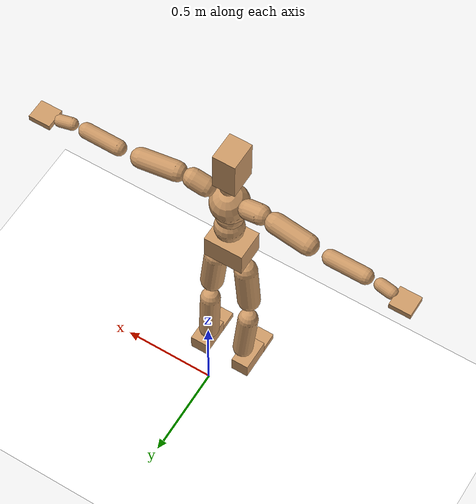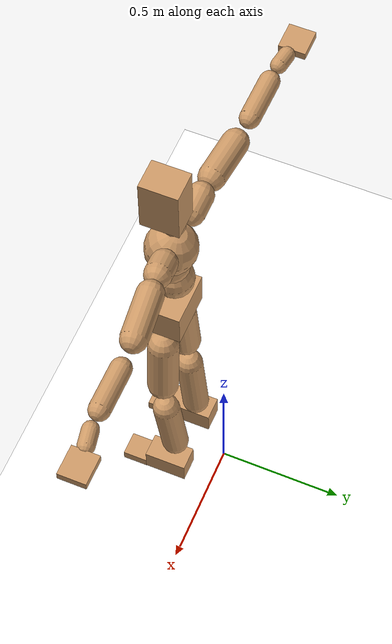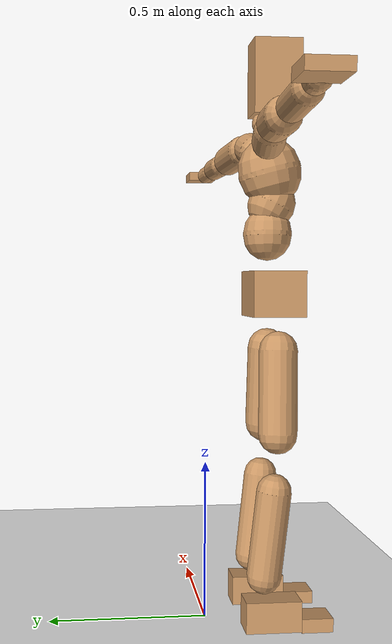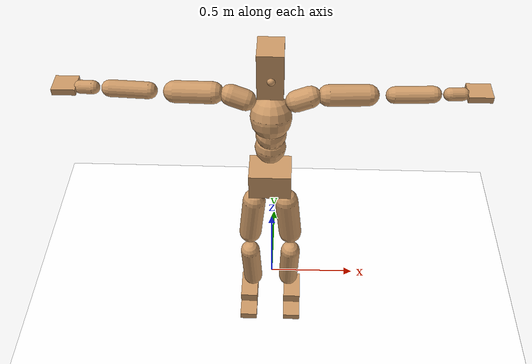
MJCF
<mujoco model="humanoid">
  <option integrator="implicitfast" />

  <visual>
    <global offwidth="1280" offheight="960" />
    <headlight active="1" ambient="0.34 0.34 0.34" diffuse="0.5 0.5 0.5" />
  </visual>

  <default>
    <joint damping="2" stiffness="2" armature="0.01" limited="true" solimplimit="0 .99 .01" />
    <geom condim="1" friction="0.7 0.005 0.0001" solimp=".99 .99 .003" solref="0.015 1" margin="0.001" rgba="0.8 0.6 .4 1" />
    <default class="smplcontact">
      <geom condim="3" friction="1. 0.005 0.0001" solref="0.015 1" solimp="0.98 0.98 0.001" priority="1" />
    </default>
    <default class="stiff_medium">
      <joint stiffness="10" />
    </default>
    <default class="stiff_medium_higher">
      <joint stiffness="50" />
    </default>
    <default class="stiff_high">
      <joint stiffness="100" />
    </default>
  </default>

  <asset>
    <texture type="skybox" builtin="gradient" rgb1="0.99 0.99 0.99" rgb2="0.608 0.828 0.892" width="100" />
    <texture builtin="flat" height="1278" mark="cross" markrgb="1 1 1" name="texgeom" random="0.01" rgb1="0.8 0.6 0.4" rgb2="0.8 0.6 0.4" type="cube" width="127" />
    <texture name="texplane" type="2d" builtin="checker" markrgb="1 1 1" rgb1="0.756 0.772 0.76" rgb2="0.6 0.6 0.6" width="100" height="100" />
    <material name="MatPlane" reflectance="0.5" texture="texplane" texrepeat="1 1" texuniform="true" />
    <material name="geom" texture="texgeom" texuniform="true" />
  </asset>

  <worldbody>
    <light name="tracking_light" pos="0 0 7" dir="0 0 -1" directional="true" cutoff="100" exponent="1" diffuse="1 1 1" specular="0.1 0.1 0.1" mode="trackcom" />
    <camera name="back" pos="0 3 2.4" xyaxes="-1 0 0 0 -1 2" mode="trackcom" />
    <camera name="side" pos="-3 0 2.4" xyaxes="0 -1 0 1 0 2" mode="trackcom" />
    <camera name="front_side" pos="-2.8 -2.8 0.8" xyaxes="0.5 -0.5 0 0.1 0.1 1" mode="trackcom" />
    <geom condim="3" name="floor" pos="0 0 0" rgba="1 1 1 1" size="100 100 .2" type="plane" material="MatPlane" />
    <body name="Pelvis" pos="-0.0018 -0.2233 1.05109" euler="90 0 0">
      <site name="Pelvis" size="0.01" />
      <freejoint name="Pelvis" />
      <geom type="box" pos="-0.0000 -0.0121 -0.0055" size="0.1069 0.0722 0.083" quat="1.0000 0.0000 0.0000 0.0000" density="3165.830099" name="Pelvis" />
      <body name="L_Hip" pos="0.0781875 -0.102825 -0.00765">
        <joint name="L_Hip_x" type="hinge" pos="0 0 0" axis="1 0 0" stiffness="12.190417346938776" range="-160.0 22.92" class="stiff_medium" damping="19.23943835853268" armature="0.013495335550763795"/>
        <joint name="L_Hip_y" type="hinge" pos="0 0 0" axis="0 1 0" stiffness="12.1624156122449" range="-70.0 70.0" class="stiff_medium" damping="12.013485255911053" armature="0.01186637857110307"/>
        <joint name="L_Hip_z" type="hinge" pos="0 0 0" axis="0 0 1" stiffness="12.164813061224491" range="-28.65 90.0" class="stiff_medium" damping="12.81394800146982" armature="0.013497721876857561"/>
        <geom type="capsule" density="2040.816327" fromto="0.0077625 -0.084375 -0.0010125 0.030825 -0.337725 -0.00405" size="0.0615" name="L_Hip" />
        <body name="L_Knee" pos="0.0385875 -0.4221 -0.0050625">
          <joint name="L_Knee_x" type="hinge" pos="0 0 0" axis="1 0 0" range="-5.16 171.89" damping="10.076823862713265" armature="0.013188848617403135" stiffness="2.4059714693877554"/>
          <joint name="L_Knee_y" type="hinge" pos="0 0 0" axis="0 1 0" range="-4.58 6.88" damping="9.486100019400173" armature="0.011596019506642574" stiffness="2.4250264693877552"/>
          <joint name="L_Knee_z" type="hinge" pos="0 0 0" axis="0 0 1" range="-6.88 4.58" damping="10.063496829521757" armature="0.013200099383969124" stiffness="2.3975664285714284"/>
          <geom type="capsule" density="1234.567901" fromto="-0.0030375 -0.08955 -0.0097875 -0.0122625 -0.3582 -0.039375" size="0.0541" name="L_Knee" />
          <body name="L_Ankle" pos="-0.0153 -0.44775 -0.0491625">
            <joint name="L_Ankle_x" type="hinge" pos="0 0 0" axis="1 0 0" range="-45.84 45.84" class="stiff_medium" damping="6.8975328184231035" armature="0.011747130867095272" stiffness="11.250018673469388"/>
            <joint name="L_Ankle_y" type="hinge" pos="0 0 0" axis="0 1 0" range="-74.48 22.92" class="stiff_medium" damping="3.4392113884775433" armature="0.011682135831686723" stiffness="11.250011836734695"/>
            <joint name="L_Ankle_z" type="hinge" pos="0 0 0" axis="0 0 1" range="-4.58 4.58" class="stiff_medium" damping="6.751978545825173" armature="0.011256596119329236" stiffness="11.25"/>
            <geom type="box" pos="0.0262125 -0.0268875 0.027225" size="0.0483 0.0464 0.085" quat="1.0000 0.0000 0.0000 0.0000" density="449.071558" name="L_Ankle" class="smplcontact" />
            <body name="L_Toe" pos="0.0297 -0.062775 0.134213">
              <joint name="L_Toe_x" type="hinge" pos="0 0 0" axis="1 0 0" range="-91.67 22.92" armature="0.011009874139729795" damping="2.225857893684682" stiffness="2.25"/>
              <joint name="L_Toe_y" type="hinge" pos="0 0 0" axis="0 1 0" range="-4.58 4.58" armature="0.010711537859158194" damping="2.1954935747164432" stiffness="2.25"/>
              <joint name="L_Toe_z" type="hinge" pos="0 0 0" axis="0 0 1" range="-4.58 4.58" armature="0.010108317957718103" damping="2.1327782540557623" stiffness="2.25"/>
              <geom type="box" pos="-0.003375 0.0061875 0.0279" size="0.0478 0.02 0.0496" quat="1.0000 0.0000 0.0000 0.0000" density="423.206892" name="L_Toe" class="smplcontact" />
            </body>
          </body>
        </body>
      </body>
      <body name="R_Hip" pos="-0.0761625 -0.101813 -0.0048375">
        <joint name="R_Hip_x" type="hinge" pos="0 0 0" axis="1 0 0" stiffness="12.190417346938776" range="-160.0 22.92" class="stiff_medium" damping="19.23943835853268" armature="0.013495335550763795"/>
        <joint name="R_Hip_y" type="hinge" pos="0 0 0" axis="0 1 0" stiffness="12.1624156122449" range="-70.0 70.0" class="stiff_medium" damping="12.013485255911053" armature="0.01186637857110307"/>
        <joint name="R_Hip_z" type="hinge" pos="0 0 0" axis="0 0 1" stiffness="12.164813061224491" range="-90.0 28.65" class="stiff_medium" damping="12.81394800146982" armature="0.013497721876857561"/>
        <geom type="capsule" density="2040.816327" fromto="-0.0086625 -0.0860625 -0.002025 -0.034425 -0.344362 -0.0079875" size="0.0606" name="R_Hip" />
        <body name="R_Knee" pos="-0.0430875 -0.430425 -0.0100125">
          <joint name="R_Knee_x" type="hinge" pos="0 0 0" axis="1 0 0" range="-5.16 171.89" damping="10.076823862713265" armature="0.013188848617403135" stiffness="2.4059714693877554"/>
          <joint name="R_Knee_y" type="hinge" pos="0 0 0" axis="0 1 0" range="-6.88 4.58" damping="9.486100019400173" armature="0.011596019506642574" stiffness="2.4250264693877552"/>
          <joint name="R_Knee_z" type="hinge" pos="0 0 0" axis="0 0 1" range="-4.58 6.88" damping="10.063496829521757" armature="0.013200099383969124" stiffness="2.3975664285714284"/>
          <geom type="capsule" density="1234.567901" fromto="0.0036 -0.0896625 -0.0095625 0.014175 -0.358537 -0.038025" size="0.0541" name="R_Knee" />
          <body name="R_Ankle" pos="0.017775 -0.4482 -0.0475875">
            <joint name="R_Ankle_x" type="hinge" pos="0 0 0" axis="1 0 0" range="-45.84 45.84" class="stiff_medium" damping="6.8975328184231035" armature="0.011747130867095272" stiffness="11.250018673469388"/>
            <joint name="R_Ankle_y" type="hinge" pos="0 0 0" axis="0 1 0" range="-22.92 74.48" class="stiff_medium" damping="3.4392113884775433" armature="0.011682135831686723" stiffness="11.250011836734695"/>
            <joint name="R_Ankle_z" type="hinge" pos="0 0 0" axis="0 0 1" range="-4.58 4.58" class="stiff_medium" damping="6.751978545825173" armature="0.011256596119329236" stiffness="11.25"/>
            <geom type="box" pos="-0.02385 -0.019575 0.0288" size="0.0483 0.0478 0.0865" quat="1.0000 0.0000 0.0000 0.0000" density="434.700981" name="R_Ankle" class="smplcontact" />
            <body name="R_Toe" pos="-0.028575 -0.0541125 0.138713">
              <joint name="R_Toe_x" type="hinge" pos="0 0 0" axis="1 0 0" range="-91.67 22.92" armature="0.011009874139729795" damping="2.225857893684682" stiffness="2.25"/>
              <joint name="R_Toe_y" type="hinge" pos="0 0 0" axis="0 1 0" range="-4.58 4.58" armature="0.010711537859158194" damping="2.1954935747164432" stiffness="2.25"/>
              <joint name="R_Toe_z" type="hinge" pos="0 0 0" axis="0 0 1" range="-4.58 4.58" armature="0.010108317957718103" damping="2.1327782540557623" stiffness="2.25"/>
              <geom type="box" pos="0.004725 0.0050625 0.0255375" size="0.0479 0.0216 0.0493" quat="1.0000 0.0000 0.0000 0.0000" density="407.384095" name="R_Toe" class="smplcontact" />
            </body>
          </body>
        </body>
      </body>
      <body name="Torso" pos="-0.0025 0.109 -0.0267">
        <joint name="Torso_x" type="hinge" pos="0 0 0" axis="1 0 0" range="-25.78 57.3" class="stiff_medium" damping="16.249002662379556" armature="0.011000822944888126" stiffness="10.667084285714289"/>
        <joint name="Torso_y" type="hinge" pos="0 0 0" axis="0 1 0" range="-57.3 57.3" class="stiff_high" damping="25.82786225767885" armature="0.015782642166796142" stiffness="105.6664755102041"/>
        <joint name="Torso_z" type="hinge" pos="0 0 0" axis="0 0 1" range="-34.38 34.38" class="stiff_high" damping="22.95942684909094" armature="0.012628565201764915" stiffness="104.35375531914897"/>
        <geom type="capsule" density="2040.816327" fromto="0.0025 0.0608 0.0005 0.003 0.0743 0.0006" size="0.0769" name="Torso" />
        <body name="Spine" pos="0.0055 0.1352 0.0011">
          <joint name="Spine_x" type="hinge" pos="0 0 0" axis="1 0 0" stiffness="10.801640204081632" range="-25.78 57.3" class="stiff_medium" damping="16.529498689681223" armature="0.011242092117287049"/>
          <joint name="Spine_y" type="hinge" pos="0 0 0" axis="0 1 0" stiffness="10.993194042553192" range="-57.3 57.3" class="stiff_high" damping="10.550939846165113" armature="0.015822621024438047"/>
          <joint name="Spine_z" type="hinge" pos="0 0 0" axis="0 0 1" stiffness="21.950184081632656" range="-34.38 34.38" class="stiff_high" damping="14.755254913518767" armature="0.013775988465595862"/>
          <geom type="capsule" density="2040.816327" fromto="0.0007 0.0238 0.0114 0.0008 0.0291 0.014" size="0.0755" name="Spine" />
          <body name="Chest" pos="0.0015 0.0529 0.0254">
            <joint name="Chest_x" type="hinge" pos="0 0 0" axis="1 0 0" stiffness="11.160686250000001" range="-25.78 57.3" class="stiff_medium" damping="16.913025635620155" armature="0.011391192649850406"/>
            <joint name="Chest_y" type="hinge" pos="0 0 0" axis="0 1 0" stiffness="12.279827826086954" range="-57.3 57.3" class="stiff_high" damping="11.153527766970866" armature="0.015828955346832537"/>
            <joint name="Chest_z" type="hinge" pos="0 0 0" axis="0 0 1" stiffness="22.066057083333334" range="-34.38 34.38" class="stiff_high" damping="15.064016907343916" armature="0.014283161773945485"/>
            <geom type="capsule" density="2040.816327" fromto="-0.0009 0.0682 -0.0173 -0.001 0.0833 -0.0212" size="0.1002" name="Chest" />
            <body name="Neck" pos="-0.0028 0.2139 -0.0429">
              <joint name="Neck_x" type="hinge" pos="0 0 0" axis="1 0 0" range="-28.65 57.3" class="stiff_medium_higher" damping="9.999999999999996" armature="0.009999999999999993" stiffness="50.0"/>
              <joint name="Neck_y" type="hinge" pos="0 0 0" axis="0 1 0" range="-40.11 40.11" class="stiff_medium_higher" damping="10.0" armature="0.010000000000000002" stiffness="50.0"/>
              <joint name="Neck_z" type="hinge" pos="0 0 0" axis="0 0 1" range="-40.11 40.11" class="stiff_medium_higher" damping="9.999999999999996" armature="0.009999999999999993" stiffness="50.0"/>
              <geom type="capsule" density="1000" fromto="0.001 0.013 0.0103 0.0041 0.052 0.0411" size="0.0436" name="Neck" />
              <body name="Head" pos="0.0052 0.065 0.0513">
                <joint name="Head_x" type="hinge" pos="0 0 0" axis="1 0 0" range="-28.65 57.3" class="stiff_medium_higher" damping="1.999999999999994" armature="0.009999999999999941" stiffness="50.0"/>
                <joint name="Head_y" type="hinge" pos="0 0 0" axis="0 1 0" range="-40.11 40.11" class="stiff_medium_higher" damping="1.9999999999999998" armature="0.009999999999999998" stiffness="50.0"/>
                <joint name="Head_z" type="hinge" pos="0 0 0" axis="0 0 1" range="-40.11 40.11" class="stiff_medium_higher" damping="1.9999999999999913" armature="0.009999999999999913" stiffness="50.0"/>
                <geom type="box" pos="-0.0042 0.0876 -0.0116" size="0.0606 0.1154 0.076" quat="1.0000 0.0000 0.0000 0.0000" density="1018.069894" name="Head" />
                <geom type="capsule" name="nose" size="0.02 0.01" pos="0 0.07 0.05" quat="1 0 0 0" mass="0" contype="0" conaffinity="0" />
              </body>
            </body>
            <body name="L_Thorax" pos="0.09456 0.14604 -0.04092">
              <joint name="L_Thorax_x" type="hinge" pos="0 0 0" axis="1 0 0" range="-10.89 4.58" class="stiff_medium_higher" damping="27.342828037145384" armature="0.013883161405287383" stiffness="67.31448112244898"/>
              <joint name="L_Thorax_y" type="hinge" pos="0 0 0" axis="0 1 0" range="-28.65 17.19" class="stiff_medium_higher" damping="29.39539222803986" armature="0.015973211475722778" stiffness="67.620175"/>
              <joint name="L_Thorax_z" type="hinge" pos="0 0 0" axis="0 0 1" range="-31.51 40.11" class="stiff_medium_higher" damping="29.39640952740424" armature="0.015975115138279126" stiffness="67.61679693877551"/>
              <geom type="capsule" density="1000" fromto="0.02184 0.00732 -0.00216 0.08736 0.02928 -0.00852" size="0.0521" name="L_Thorax" />
              <body name="L_Shoulder" pos="0.1092 0.0366 -0.01068">
                <joint name="L_Shoulder_x" type="hinge" pos="0 0 0" axis="1 0 0" range="-97.4 97.4" class="stiff_medium" damping="7.93422487134284" armature="0.013032307273704642" stiffness="13.417919999999999"/>
                <joint name="L_Shoulder_y" type="hinge" pos="0 0 0" axis="0 1 0" range="-108.86 80.21" class="stiff_medium" damping="8.787023272078152" armature="0.015885669306109254" stiffness="13.501298367346937"/>
                <joint name="L_Shoulder_z" type="hinge" pos="0 0 0" axis="0 0 1" range="-97.4 85.94" class="stiff_medium" damping="8.786069504764416" armature="0.015888008764521226" stiffness="13.496380000000002"/>
                <geom type="capsule" density="1000" fromto="0.06228 -0.00312 -0.0066 0.24924 -0.01224 -0.0264" size="0.0517" name="L_Shoulder" />
                <body name="L_Elbow" pos="0.31152 -0.01536 -0.033">
                  <joint name="L_Elbow_x" type="hinge" pos="0 0 0" axis="1 0 0" range="-17.19 4.58" damping="6.23245620529139" armature="0.011731525217588273" stiffness="2.6488293469387756"/>
                  <joint name="L_Elbow_y" type="hinge" pos="0 0 0" axis="0 1 0" range="-180.0 17.19" damping="7.156106367972162" armature="0.01546177560609673" stiffness="2.649623673469388"/>
                  <joint name="L_Elbow_z" type="hinge" pos="0 0 0" axis="0 0 1" range="-100.84 4.58" damping="7.157115854883434" armature="0.01547403112739426" stiffness="2.648272163265306"/>
                  <geom type="capsule" density="1000" fromto="0.05976 0.00216 -0.00024 0.23928 0.00864 -0.00108" size="0.0405" name="L_Elbow" />
                  <body name="L_Wrist" pos="0.29904 0.0108 -0.00144">
                    <joint name="L_Wrist_x" type="hinge" pos="0 0 0" axis="1 0 0" range="-180.0 22.92" armature="0.01147048725635297" damping="2.388555556520286" stiffness="2.4869029183673472"/>
                    <joint name="L_Wrist_y" type="hinge" pos="0 0 0" axis="0 1 0" range="-17.19 17.19" armature="0.014137841032973752" damping="2.6585613747278742" stiffness="2.4996562653061227"/>
                    <joint name="L_Wrist_z" type="hinge" pos="0 0 0" axis="0 0 1" range="-22.92 22.92" armature="0.014283798741946279" damping="2.6694984653462854" stiffness="2.4945122040816328"/>
                    <geom type="capsule" density="1000" fromto="0.02016 -0.00192 -0.0036 0.08064 -0.0078 -0.0144" size="0.0318" name="L_Wrist" class="smplcontact" />
                    <body name="L_Hand" pos="0.1008 -0.00984 -0.01788">
                      <joint name="L_Hand_x" type="hinge" pos="0 0 0" axis="1 0 0" range="-17.19 17.19" armature="0.010191691106290021" damping="2.21178926008316" stiffness="2.4000000000000004"/>
                      <joint name="L_Hand_y" type="hinge" pos="0 0 0" axis="0 1 0" range="-51.57 51.57" armature="0.012318239464289154" damping="2.4316157062452928" stiffness="2.4000000000000004"/>
                      <joint name="L_Hand_z" type="hinge" pos="0 0 0" axis="0 0 1" range="-91.67 91.67" armature="0.012885099984316414" damping="2.4869354620640802" stiffness="2.4000000000000004"/>
                      <geom type="box" pos="0.05916 0.0012 -0.00696" size="0.0585 0.0158 0.0538" quat="1.0000 0.0000 0.0000 0.0000" density="400.552564" name="L_Hand" class="smplcontact" />
                    </body>
                  </body>
                </body>
              </body>
            </body>
            <body name="R_Thorax" pos="-0.09816 0.14256 -0.04632">
              <joint name="R_Thorax_x" type="hinge" pos="0 0 0" axis="1 0 0" range="-10.89 4.58" class="stiff_medium_higher" damping="27.342828037145384" armature="0.013883161405287383" stiffness="67.31448112244898"/>
              <joint name="R_Thorax_y" type="hinge" pos="0 0 0" axis="0 1 0" range="-17.19 28.65" class="stiff_medium_higher" damping="29.39539222803986" armature="0.015973211475722778" stiffness="67.620175"/>
              <joint name="R_Thorax_z" type="hinge" pos="0 0 0" axis="0 0 1" range="-40.11 31.51" class="stiff_medium_higher" damping="29.39640952740424" armature="0.015975115138279126" stiffness="67.61679693877551"/>
              <geom type="capsule" density="1000" fromto="-0.02304 0.0078 -0.00216 -0.09216 0.0312 -0.00876" size="0.0511" name="R_Thorax" />
              <body name="R_Shoulder" pos="-0.1152 0.03912 -0.01092">
                <joint name="R_Shoulder_x" type="hinge" pos="0 0 0" axis="1 0 0" range="-97.4 97.4" class="stiff_medium" damping="7.93422487134284" armature="0.013032307273704642" stiffness="13.417919999999999"/>
                <joint name="R_Shoulder_y" type="hinge" pos="0 0 0" axis="0 1 0" range="-80.21 108.86" class="stiff_medium" damping="8.787023272078152" armature="0.015885669306109254" stiffness="13.501298367346937"/>
                <joint name="R_Shoulder_z" type="hinge" pos="0 0 0" axis="0 0 1" range="-85.94 97.4" class="stiff_medium" damping="8.786069504764416" armature="0.015888008764521226" stiffness="13.496380000000002"/>
                <geom type="capsule" density="1000" fromto="-0.06084 -0.00324 -0.00516 -0.2436 -0.01284 -0.02052" size="0.0531" name="R_Shoulder" />
                <body name="R_Elbow" pos="-0.30444 -0.01596 -0.02568">
                  <joint name="R_Elbow_x" type="hinge" pos="0 0 0" axis="1 0 0" range="-17.19 4.58" damping="6.23245620529139" armature="0.011731525217588273" stiffness="2.6488293469387756"/>
                  <joint name="R_Elbow_y" type="hinge" pos="0 0 0" axis="0 1 0" range="-17.19 180.0" damping="7.156106367972162" armature="0.01546177560609673" stiffness="2.649623673469388"/>
                  <joint name="R_Elbow_z" type="hinge" pos="0 0 0" axis="0 0 1" range="-4.58 100.84" damping="7.157115854883434" armature="0.01547403112739426" stiffness="2.648272163265306"/>
                  <geom type="capsule" density="1000" fromto="-0.06132 0.00192 -0.00132 -0.24504 0.00744 -0.00528" size="0.0408" name="R_Elbow" />
                  <body name="R_Wrist" pos="-0.30636 0.00936 -0.00672">
                    <joint name="R_Wrist_x" type="hinge" pos="0 0 0" axis="1 0 0" range="-180.0 22.92" armature="0.01147048725635297" damping="2.388555556520286" stiffness="2.4869029183673472"/>
                    <joint name="R_Wrist_y" type="hinge" pos="0 0 0" axis="0 1 0" range="-17.19 17.19" armature="0.014137841032973752" damping="2.6585613747278742" stiffness="2.4996562653061227"/>
                    <joint name="R_Wrist_z" type="hinge" pos="0 0 0" axis="0 0 1" range="-22.92 22.92" armature="0.014283798741946279" damping="2.6694984653462854" stiffness="2.4945122040816328"/>
                    <geom type="capsule" density="1000" fromto="-0.02028 -0.00144 -0.00252 -0.08124 -0.00588 -0.00996" size="0.0326" name="R_Wrist" class="smplcontact" />
                    <body name="R_Hand" pos="-0.10152 -0.00732 -0.01236">
                      <joint name="R_Hand_x" type="hinge" pos="0 0 0" axis="1 0 0" range="-17.19 17.19" armature="0.010191691106290021" damping="2.21178926008316" stiffness="2.4000000000000004"/>
                      <joint name="R_Hand_y" type="hinge" pos="0 0 0" axis="0 1 0" range="-51.57 51.57" armature="0.012318239464289154" damping="2.4316157062452928" stiffness="2.4000000000000004"/>
                      <joint name="R_Hand_z" type="hinge" pos="0 0 0" axis="0 0 1" range="-91.67 91.67" armature="0.012885099984316414" damping="2.4869354620640802" stiffness="2.4000000000000004"/>
                      <geom type="box" pos="-0.05544 -0.00108 -0.00948" size="0.0569 0.0164 0.0546" quat="1.0000 0.0000 0.0000 0.0000" density="403.679611" name="R_Hand" class="smplcontact" />
                    </body>
                  </body>
                </body>
              </body>
            </body>
          </body>
        </body>
      </body>
    </body>
  </worldbody>
  <actuator>
    <general name="L_Hip_x" joint="L_Hip_x" biastype="affine" gainprm="350.267339766903" biasprm="-262.4898695344799 -219.42751224489797 -2.565258447804357" ctrllimited="true" ctrlrange="-1 1" forcerange="-438.85502448979594 438.85502448979594" />
    <general name="L_Hip_y" joint="L_Hip_y" biastype="affine" gainprm="267.4654887613407" biasprm="0.0 -218.9234810204082 -2.4026970511822108" ctrllimited="true" ctrlrange="-1 1" forcerange="-437.8469620408164 437.8469620408164" />
    <general name="L_Hip_z" joint="L_Hip_z" biastype="affine" gainprm="226.72168417679922" biasprm="117.23030193212499 -218.96663510204084 -2.562789600293964" ctrllimited="true" ctrlrange="-1 1" forcerange="-437.9332702040817 437.9332702040817" />
    <general name="L_Knee_x" joint="L_Knee_x" biastype="affine" gainprm="334.5617487428154" biasprm="315.0606064269393 -216.53743224489799 -2.5192059656783163" ctrllimited="true" ctrlrange="-1 1" forcerange="-433.07486448979597 433.07486448979597" />
    <general name="L_Knee_y" joint="L_Knee_y" biastype="affine" gainprm="21.82684590193453" biasprm="4.380606071068885 -218.25238224489797 -2.371525004850043" ctrllimited="true" ctrlrange="-1 1" forcerange="-436.50476448979595 436.50476448979595" />
    <general name="L_Knee_z" joint="L_Knee_z" biastype="affine" gainprm="21.579687329883924" biasprm="-4.331001820133772 -215.78097857142856 -2.515874207380439" ctrllimited="true" ctrlrange="-1 1" forcerange="-431.5619571428571 431.5619571428571" />
    <general name="L_Ankle_x" joint="L_Ankle_x" biastype="affine" gainprm="81.00610103169612" biasprm="0.0 -101.2501680612245 -2.2991776061410345" ctrllimited="true" ctrlrange="-1 1" forcerange="-202.500336122449 202.500336122449" />
    <general name="L_Ankle_y" joint="L_Ankle_y" biastype="affine" gainprm="86.06009430266938" biasprm="-45.557068400879196 -101.25010653061226 -2.292807592318362" ctrllimited="true" ctrlrange="-1 1" forcerange="-202.5002130612245 202.5002130612245" />
    <general name="L_Ankle_z" joint="L_Ankle_z" biastype="affine" gainprm="8.093528073810704" biasprm="0.0 -101.25 -2.2506595152750575" ctrllimited="true" ctrlrange="-1 1" forcerange="-202.5 202.5" />
    <general name="L_Toe_x" joint="L_Toe_x" biastype="affine" gainprm="80.99889798934223" biasprm="-48.59651136021711 -81.0 -0.8903431574738727" ctrllimited="true" ctrlrange="-1 1" forcerange="-162.0 162.0" />
    <general name="L_Toe_y" joint="L_Toe_y" biastype="affine" gainprm="6.474822459048563" biasprm="0.0 -81.0 -0.8781974298865773" ctrllimited="true" ctrlrange="-1 1" forcerange="-162.0 162.0" />
    <general name="L_Toe_z" joint="L_Toe_z" biastype="affine" gainprm="6.474822459048563" biasprm="0.0 -81.0 -0.853111301622305" ctrllimited="true" ctrlrange="-1 1" forcerange="-162.0 162.0" />
    <general name="R_Hip_x" joint="R_Hip_x" biastype="affine" gainprm="350.267339766903" biasprm="-262.4898695344799 -219.42751224489797 -2.565258447804357" ctrllimited="true" ctrlrange="-1 1" forcerange="-438.85502448979594 438.85502448979594" />
    <general name="R_Hip_y" joint="R_Hip_y" biastype="affine" gainprm="267.4654887613407" biasprm="0.0 -218.9234810204082 -2.4026970511822108" ctrllimited="true" ctrlrange="-1 1" forcerange="-437.8469620408164 437.8469620408164" />
    <general name="R_Hip_z" joint="R_Hip_z" biastype="affine" gainprm="226.72168417679922" biasprm="-117.23030193212499 -218.96663510204084 -2.562789600293964" ctrllimited="true" ctrlrange="-1 1" forcerange="-437.9332702040817 437.9332702040817" />
    <general name="R_Knee_x" joint="R_Knee_x" biastype="affine" gainprm="334.5617487428154" biasprm="315.0606064269393 -216.53743224489799 -2.5192059656783163" ctrllimited="true" ctrlrange="-1 1" forcerange="-433.07486448979597 433.07486448979597" />
    <general name="R_Knee_y" joint="R_Knee_y" biastype="affine" gainprm="21.82684590193453" biasprm="-4.380606071068885 -218.25238224489797 -2.371525004850043" ctrllimited="true" ctrlrange="-1 1" forcerange="-436.50476448979595 436.50476448979595" />
    <general name="R_Knee_z" joint="R_Knee_z" biastype="affine" gainprm="21.579687329883924" biasprm="4.331001820133772 -215.78097857142856 -2.515874207380439" ctrllimited="true" ctrlrange="-1 1" forcerange="-431.5619571428571 431.5619571428571" />
    <general name="R_Ankle_x" joint="R_Ankle_x" biastype="affine" gainprm="81.00610103169612" biasprm="0.0 -101.2501680612245 -2.2991776061410345" ctrllimited="true" ctrlrange="-1 1" forcerange="-202.500336122449 202.500336122449" />
    <general name="R_Ankle_y" joint="R_Ankle_y" biastype="affine" gainprm="86.06009430266938" biasprm="45.557068400879196 -101.25010653061226 -2.292807592318362" ctrllimited="true" ctrlrange="-1 1" forcerange="-202.5002130612245 202.5002130612245" />
    <general name="R_Ankle_z" joint="R_Ankle_z" biastype="affine" gainprm="8.093528073810704" biasprm="0.0 -101.25 -2.2506595152750575" ctrllimited="true" ctrlrange="-1 1" forcerange="-202.5 202.5" />
    <general name="R_Toe_x" joint="R_Toe_x" biastype="affine" gainprm="80.99889798934223" biasprm="-48.59651136021711 -81.0 -0.8903431574738727" ctrllimited="true" ctrlrange="-1 1" forcerange="-162.0 162.0" />
    <general name="R_Toe_y" joint="R_Toe_y" biastype="affine" gainprm="6.474822459048563" biasprm="0.0 -81.0 -0.8781974298865773" ctrllimited="true" ctrlrange="-1 1" forcerange="-162.0 162.0" />
    <general name="R_Toe_z" joint="R_Toe_z" biastype="affine" gainprm="6.474822459048563" biasprm="0.0 -81.0 -0.853111301622305" ctrllimited="true" ctrlrange="-1 1" forcerange="-162.0 162.0" />
    <general name="Torso_x" joint="Torso_x" biastype="affine" gainprm="185.60976811664653" biasprm="70.4191127953382 -256.0100228571429 -4.333067376634548" ctrllimited="true" ctrlrange="-1 1" forcerange="-384.01503428571436 384.01503428571436" />
    <general name="Torso_y" joint="Torso_y" biastype="affine" gainprm="253.61822171989738" biasprm="0.0 -253.59954122448983 -5.16557245153577" ctrllimited="true" ctrlrange="-1 1" forcerange="-380.39931183673474 380.39931183673474" />
    <general name="Torso_z" joint="Torso_z" biastype="affine" gainprm="150.28047671343057" biasprm="0.0 -250.44901276595752 -4.591885369818188" ctrllimited="true" ctrlrange="-1 1" forcerange="-375.6735191489363 375.6735191489363" />
    <general name="Spine_x" joint="Spine_x" biastype="affine" gainprm="187.9510726510386" biasprm="71.3073881795948 -259.2393648979592 -4.407866317248326" ctrllimited="true" ctrlrange="-1 1" forcerange="-388.8590473469388 388.8590473469388" />
    <general name="Spine_y" joint="Spine_y" biastype="affine" gainprm="263.8560915968915" biasprm="0.0 -263.8366570212766 -5.275469923082556" ctrllimited="true" ctrlrange="-1 1" forcerange="-395.7549855319149 395.7549855319149" />
    <general name="Spine_z" joint="Spine_z" biastype="affine" gainprm="158.05296693189538" biasprm="0.0 -263.4022089795919 -4.918418304506256" ctrllimited="true" ctrlrange="-1 1" forcerange="-395.1033134693878 395.1033134693878" />
    <general name="Chest_x" joint="Chest_x" biastype="affine" gainprm="194.19855805015155" biasprm="73.67764263048598 -267.85647 -4.510140169498708" ctrllimited="true" ctrlrange="-1 1" forcerange="-401.78470500000003 401.78470500000003" />
    <general name="Chest_y" joint="Chest_y" biastype="affine" gainprm="294.73757700737673" biasprm="0.0 -294.71586782608694 -5.576763883485433" ctrllimited="true" ctrlrange="-1 1" forcerange="-442.0738017391304 442.0738017391304" />
    <general name="Chest_z" joint="Chest_z" biastype="affine" gainprm="158.88731399878043" biasprm="0.0 -264.792685 -5.021338969114638" ctrllimited="true" ctrlrange="-1 1" forcerange="-397.1890275 397.1890275" />
    <general name="Neck_x" joint="Neck_x" biastype="affine" gainprm="27.00198885760427" biasprm="9.000662952534757 -36.0 -0.7999999999999997" ctrllimited="true" ctrlrange="-1 1" forcerange="-72.0 72.0" />
    <general name="Neck_y" joint="Neck_y" biastype="affine" gainprm="25.20185626709732" biasprm="0.0 -36.0 -0.8" ctrllimited="true" ctrlrange="-1 1" forcerange="-72.0 72.0" />
    <general name="Neck_z" joint="Neck_z" biastype="affine" gainprm="25.20185626709732" biasprm="0.0 -36.0 -0.7999999999999998" ctrllimited="true" ctrlrange="-1 1" forcerange="-72.0 72.0" />
    <general name="Head_x" joint="Head_x" biastype="affine" gainprm="18.001325905069514" biasprm="6.000441968356505 -24.0 -0.7999999999999976" ctrllimited="true" ctrlrange="-1 1" forcerange="-48.0 48.0" />
    <general name="Head_y" joint="Head_y" biastype="affine" gainprm="16.801237511398213" biasprm="0.0 -24.0 -0.7999999999999999" ctrllimited="true" ctrlrange="-1 1" forcerange="-48.0 48.0" />
    <general name="Head_z" joint="Head_z" biastype="affine" gainprm="16.801237511398213" biasprm="0.0 -24.0 -0.7999999999999966" ctrllimited="true" ctrlrange="-1 1" forcerange="-48.0 48.0" />
    <general name="L_Thorax_x" joint="L_Thorax_x" biastype="affine" gainprm="21.810088599489532" biasprm="-8.896034845687073 -161.55475469387756 -2.1874262429716307" ctrllimited="true" ctrlrange="-1 1" forcerange="-323.1095093877551 323.1095093877551" />
    <general name="L_Thorax_y" joint="L_Thorax_y" biastype="affine" gainprm="64.92014975641781" biasprm="-16.230037439104454 -162.28842 -2.3516313782431886" ctrllimited="true" ctrlrange="-1 1" forcerange="-324.57684 324.57684" />
    <general name="L_Thorax_z" joint="L_Thorax_z" biastype="affine" gainprm="101.42558571489965" biasprm="12.179000797935451 -162.28031265306123 -2.3517127621923395" ctrllimited="true" ctrlrange="-1 1" forcerange="-324.56062530612246 324.56062530612246" />
    <general name="L_Shoulder_x" joint="L_Shoulder_x" biastype="affine" gainprm="109.48705143225524" biasprm="0.0 -64.406016 -2.1157932990247574" ctrllimited="true" ctrlrange="-1 1" forcerange="-128.812032 128.812032" />
    <general name="L_Shoulder_y" joint="L_Shoulder_y" biastype="affine" gainprm="106.92684888169526" biasprm="-16.202751470146342 -64.80623216326529 -2.3432062058875074" ctrllimited="true" ctrlrange="-1 1" forcerange="-129.61246432653058 129.61246432653058" />
    <general name="L_Shoulder_z" joint="L_Shoulder_z" biastype="affine" gainprm="103.64852686442701" biasprm="-6.478739597831004 -64.782624 -2.3429518679371775" ctrllimited="true" ctrlrange="-1 1" forcerange="-129.565248 129.565248" />
    <general name="L_Elbow_x" joint="L_Elbow_x" biastype="affine" gainprm="18.115998712513008" biasprm="-10.493465492181402 -95.35785648979592 -0.9971929928466224" ctrllimited="true" ctrlrange="-1 1" forcerange="-190.71571297959184 190.71571297959184" />
    <general name="L_Elbow_y" joint="L_Elbow_y" biastype="affine" gainprm="164.14171059385552" biasprm="-135.52366703070956 -95.38645224489797 -1.1449770188755461" ctrllimited="true" ctrlrange="-1 1" forcerange="-190.77290448979593 190.77290448979593" />
    <general name="L_Elbow_z" joint="L_Elbow_z" biastype="affine" gainprm="87.70725119427513" biasprm="-80.08632138077144 -95.33779787755103 -1.1451385367813496" ctrllimited="true" ctrlrange="-1 1" forcerange="-190.67559575510205 190.67559575510205" />
    <general name="L_Wrist_x" joint="L_Wrist_x" biastype="affine" gainprm="26.423011144121567" biasprm="-20.454004487081686 -14.921417510204083 -0.9554222226081145" ctrllimited="true" ctrlrange="-1 1" forcerange="-29.842835020408167 29.842835020408167" />
    <general name="L_Wrist_y" joint="L_Wrist_y" biastype="affine" gainprm="4.499712708242443" biasprm="0.0 -14.997937591836736 -1.0634245498911497" ctrllimited="true" ctrlrange="-1 1" forcerange="-29.995875183673473 29.995875183673473" />
    <general name="L_Wrist_z" joint="L_Wrist_z" biastype="affine" gainprm="5.987270287979567" biasprm="0.0 -14.967073224489797 -1.0677993861385142" ctrllimited="true" ctrlrange="-1 1" forcerange="-29.934146448979593 29.934146448979593" />
    <general name="L_Hand_x" joint="L_Hand_x" biastype="affine" gainprm="4.320318217216685" biasprm="0.0 -14.400000000000002 -0.884715704033264" ctrllimited="true" ctrlrange="-1 1" forcerange="-28.800000000000004 28.800000000000004" />
    <general name="L_Hand_y" joint="L_Hand_y" biastype="affine" gainprm="12.960954651650052" biasprm="0.0 -14.400000000000002 -0.9726462824981171" ctrllimited="true" ctrlrange="-1 1" forcerange="-28.800000000000004 28.800000000000004" />
    <general name="L_Hand_z" joint="L_Hand_z" biastype="affine" gainprm="23.03918388436611" biasprm="0.0 -14.400000000000002 -0.9947741848256322" ctrllimited="true" ctrlrange="-1 1" forcerange="-28.800000000000004 28.800000000000004" />
    <general name="R_Thorax_x" joint="R_Thorax_x" biastype="affine" gainprm="21.810088599489532" biasprm="-8.896034845687073 -161.55475469387756 -2.1874262429716307" ctrllimited="true" ctrlrange="-1 1" forcerange="-323.1095093877551 323.1095093877551" />
    <general name="R_Thorax_y" joint="R_Thorax_y" biastype="affine" gainprm="64.92014975641781" biasprm="16.230037439104443 -162.28842 -2.3516313782431886" ctrllimited="true" ctrlrange="-1 1" forcerange="-324.57684 324.57684" />
    <general name="R_Thorax_z" joint="R_Thorax_z" biastype="affine" gainprm="101.42558571489965" biasprm="-12.179000797935451 -162.28031265306123 -2.3517127621923395" ctrllimited="true" ctrlrange="-1 1" forcerange="-324.56062530612246 324.56062530612246" />
    <general name="R_Shoulder_x" joint="R_Shoulder_x" biastype="affine" gainprm="109.48705143225524" biasprm="0.0 -64.406016 -2.1157932990247574" ctrllimited="true" ctrlrange="-1 1" forcerange="-128.812032 128.812032" />
    <general name="R_Shoulder_y" joint="R_Shoulder_y" biastype="affine" gainprm="106.92684888169526" biasprm="16.202751470146342 -64.80623216326529 -2.3432062058875074" ctrllimited="true" ctrlrange="-1 1" forcerange="-129.61246432653058 129.61246432653058" />
    <general name="R_Shoulder_z" joint="R_Shoulder_z" biastype="affine" gainprm="103.64852686442701" biasprm="6.478739597830989 -64.782624 -2.3429518679371775" ctrllimited="true" ctrlrange="-1 1" forcerange="-129.565248 129.565248" />
    <general name="R_Elbow_x" joint="R_Elbow_x" biastype="affine" gainprm="18.115998712513008" biasprm="-10.493465492181402 -95.35785648979592 -0.9971929928466224" ctrllimited="true" ctrlrange="-1 1" forcerange="-190.71571297959184 190.71571297959184" />
    <general name="R_Elbow_y" joint="R_Elbow_y" biastype="affine" gainprm="164.14171059385552" biasprm="135.52366703070956 -95.38645224489797 -1.1449770188755461" ctrllimited="true" ctrlrange="-1 1" forcerange="-190.77290448979593 190.77290448979593" />
    <general name="R_Elbow_z" joint="R_Elbow_z" biastype="affine" gainprm="87.70725119427513" biasprm="80.08632138077142 -95.33779787755103 -1.1451385367813496" ctrllimited="true" ctrlrange="-1 1" forcerange="-190.67559575510205 190.67559575510205" />
    <general name="R_Wrist_x" joint="R_Wrist_x" biastype="affine" gainprm="26.423011144121567" biasprm="-20.454004487081686 -14.921417510204083 -0.9554222226081145" ctrllimited="true" ctrlrange="-1 1" forcerange="-29.842835020408167 29.842835020408167" />
    <general name="R_Wrist_y" joint="R_Wrist_y" biastype="affine" gainprm="4.499712708242443" biasprm="0.0 -14.997937591836736 -1.0634245498911497" ctrllimited="true" ctrlrange="-1 1" forcerange="-29.995875183673473 29.995875183673473" />
    <general name="R_Wrist_z" joint="R_Wrist_z" biastype="affine" gainprm="5.987270287979567" biasprm="0.0 -14.967073224489797 -1.0677993861385142" ctrllimited="true" ctrlrange="-1 1" forcerange="-29.934146448979593 29.934146448979593" />
    <general name="R_Hand_x" joint="R_Hand_x" biastype="affine" gainprm="4.320318217216685" biasprm="0.0 -14.400000000000002 -0.884715704033264" ctrllimited="true" ctrlrange="-1 1" forcerange="-28.800000000000004 28.800000000000004" />
    <general name="R_Hand_y" joint="R_Hand_y" biastype="affine" gainprm="12.960954651650052" biasprm="0.0 -14.400000000000002 -0.9726462824981171" ctrllimited="true" ctrlrange="-1 1" forcerange="-28.800000000000004 28.800000000000004" />
    <general name="R_Hand_z" joint="R_Hand_z" biastype="affine" gainprm="23.03918388436611" biasprm="0.0 -14.400000000000002 -0.9947741848256322" ctrllimited="true" ctrlrange="-1 1" forcerange="-28.800000000000004 28.800000000000004" />
  </actuator>
  <contact>
    <exclude body1="Torso" body2="Chest" />
    <exclude body1="Head" body2="Chest" />
    <exclude body1="R_Knee" body2="R_Toe" />
    <exclude body1="R_Knee" body2="L_Ankle" />
    <exclude body1="R_Knee" body2="L_Toe" />
    <exclude body1="L_Knee" body2="L_Toe" />
    <exclude body1="L_Knee" body2="R_Ankle" />
    <exclude body1="L_Knee" body2="R_Toe" />
    <exclude body1="L_Shoulder" body2="Chest" />
    <exclude body1="R_Shoulder" body2="Chest" />
  </contact>
  <sensor>
    <framelinvel name="sensor_Pelvis_framelinvel" objtype="xbody" objname="Pelvis" />
    <framelinvel name="sensor_L_Hip_framelinvel" objtype="xbody" objname="L_Hip" />
    <framelinvel name="sensor_L_Knee_framelinvel" objtype="xbody" objname="L_Knee" />
    <framelinvel name="sensor_L_Ankle_framelinvel" objtype="xbody" objname="L_Ankle" />
    <framelinvel name="sensor_L_Toe_framelinvel" objtype="xbody" objname="L_Toe" />
    <framelinvel name="sensor_R_Hip_framelinvel" objtype="xbody" objname="R_Hip" />
    <framelinvel name="sensor_R_Knee_framelinvel" objtype="xbody" objname="R_Knee" />
    <framelinvel name="sensor_R_Ankle_framelinvel" objtype="xbody" objname="R_Ankle" />
    <framelinvel name="sensor_R_Toe_framelinvel" objtype="xbody" objname="R_Toe" />
    <framelinvel name="sensor_Torso_framelinvel" objtype="xbody" objname="Torso" />
    <framelinvel name="sensor_Spine_framelinvel" objtype="xbody" objname="Spine" />
    <framelinvel name="sensor_Chest_framelinvel" objtype="xbody" objname="Chest" />
    <framelinvel name="sensor_Neck_framelinvel" objtype="xbody" objname="Neck" />
    <framelinvel name="sensor_Head_framelinvel" objtype="xbody" objname="Head" />
    <framelinvel name="sensor_L_Thorax_framelinvel" objtype="xbody" objname="L_Thorax" />
    <framelinvel name="sensor_L_Shoulder_framelinvel" objtype="xbody" objname="L_Shoulder" />
    <framelinvel name="sensor_L_Elbow_framelinvel" objtype="xbody" objname="L_Elbow" />
    <framelinvel name="sensor_L_Wrist_framelinvel" objtype="xbody" objname="L_Wrist" />
    <framelinvel name="sensor_L_Hand_framelinvel" objtype="xbody" objname="L_Hand" />
    <framelinvel name="sensor_R_Thorax_framelinvel" objtype="xbody" objname="R_Thorax" />
    <framelinvel name="sensor_R_Shoulder_framelinvel" objtype="xbody" objname="R_Shoulder" />
    <framelinvel name="sensor_R_Elbow_framelinvel" objtype="xbody" objname="R_Elbow" />
    <framelinvel name="sensor_R_Wrist_framelinvel" objtype="xbody" objname="R_Wrist" />
    <framelinvel name="sensor_R_Hand_framelinvel" objtype="xbody" objname="R_Hand" />
    <frameangvel name="sensor_Pelvis_frameangvel" objtype="xbody" objname="Pelvis" />
    <frameangvel name="sensor_L_Hip_frameangvel" objtype="xbody" objname="L_Hip" />
    <frameangvel name="sensor_L_Knee_frameangvel" objtype="xbody" objname="L_Knee" />
    <frameangvel name="sensor_L_Ankle_frameangvel" objtype="xbody" objname="L_Ankle" />
    <frameangvel name="sensor_L_Toe_frameangvel" objtype="xbody" objname="L_Toe" />
    <frameangvel name="sensor_R_Hip_frameangvel" objtype="xbody" objname="R_Hip" />
    <frameangvel name="sensor_R_Knee_frameangvel" objtype="xbody" objname="R_Knee" />
    <frameangvel name="sensor_R_Ankle_frameangvel" objtype="xbody" objname="R_Ankle" />
    <frameangvel name="sensor_R_Toe_frameangvel" objtype="xbody" objname="R_Toe" />
    <frameangvel name="sensor_Torso_frameangvel" objtype="xbody" objname="Torso" />
    <frameangvel name="sensor_Spine_frameangvel" objtype="xbody" objname="Spine" />
    <frameangvel name="sensor_Chest_frameangvel" objtype="xbody" objname="Chest" />
    <frameangvel name="sensor_Neck_frameangvel" objtype="xbody" objname="Neck" />
    <frameangvel name="sensor_Head_frameangvel" objtype="xbody" objname="Head" />
    <frameangvel name="sensor_L_Thorax_frameangvel" objtype="xbody" objname="L_Thorax" />
    <frameangvel name="sensor_L_Shoulder_frameangvel" objtype="xbody" objname="L_Shoulder" />
    <frameangvel name="sensor_L_Elbow_frameangvel" objtype="xbody" objname="L_Elbow" />
    <frameangvel name="sensor_L_Wrist_frameangvel" objtype="xbody" objname="L_Wrist" />
    <frameangvel name="sensor_L_Hand_frameangvel" objtype="xbody" objname="L_Hand" />
    <frameangvel name="sensor_R_Thorax_frameangvel" objtype="xbody" objname="R_Thorax" />
    <frameangvel name="sensor_R_Shoulder_frameangvel" objtype="xbody" objname="R_Shoulder" />
    <frameangvel name="sensor_R_Elbow_frameangvel" objtype="xbody" objname="R_Elbow" />
    <frameangvel name="sensor_R_Wrist_frameangvel" objtype="xbody" objname="R_Wrist" />
    <frameangvel name="sensor_R_Hand_frameangvel" objtype="xbody" objname="R_Hand" />
    <subtreelinvel name="Chest_subtreelinvel" body="Chest" />
    <gyro name="Pelvis_gyro" site="Pelvis" />
  </sensor>
</mujoco>
